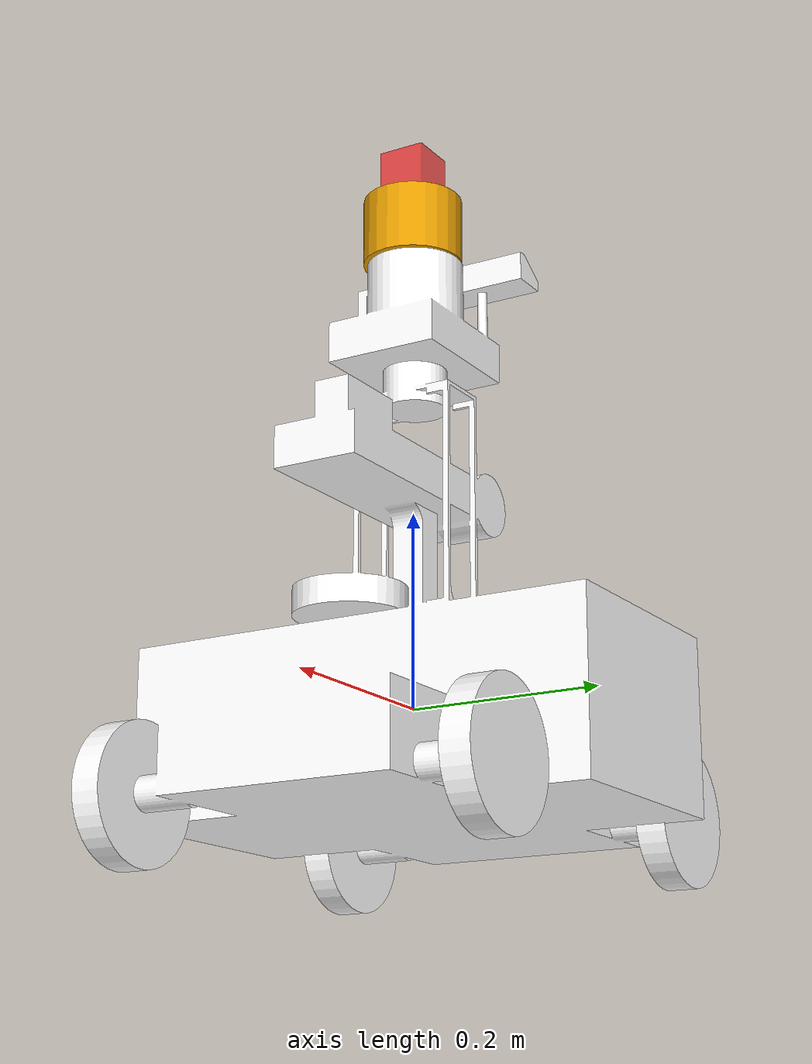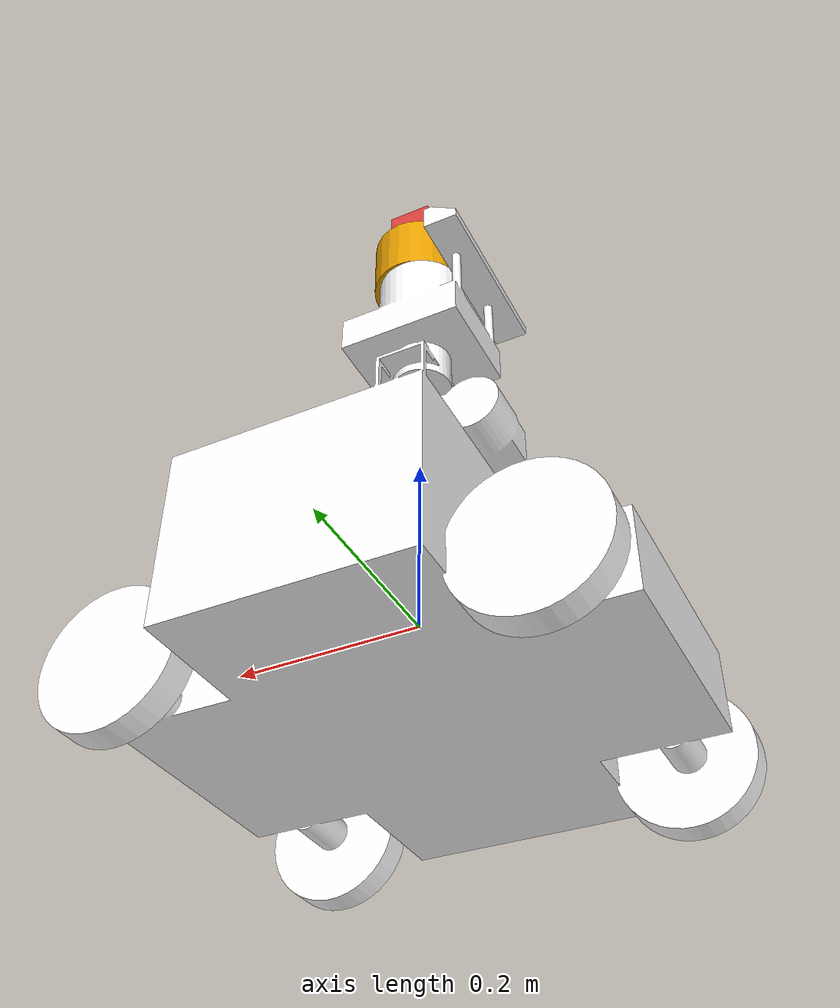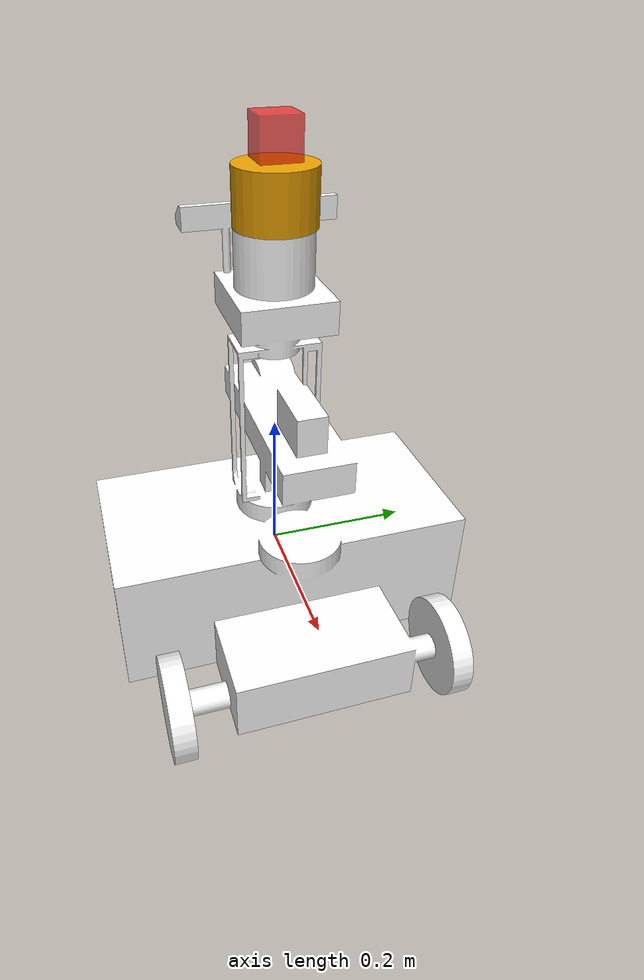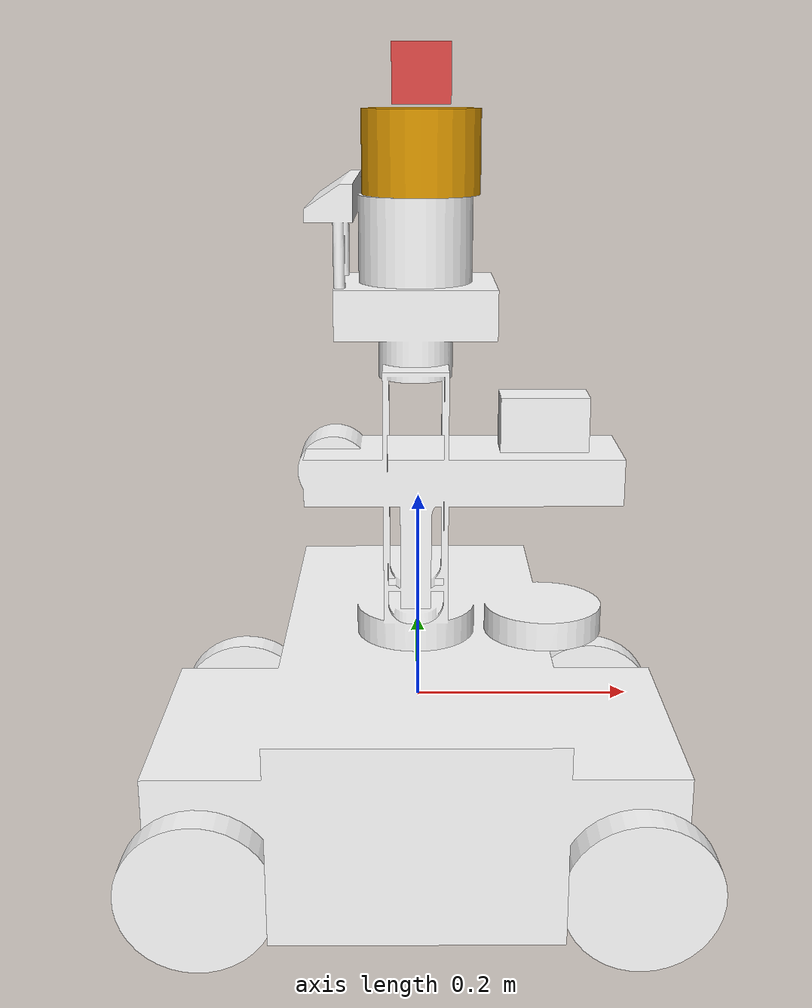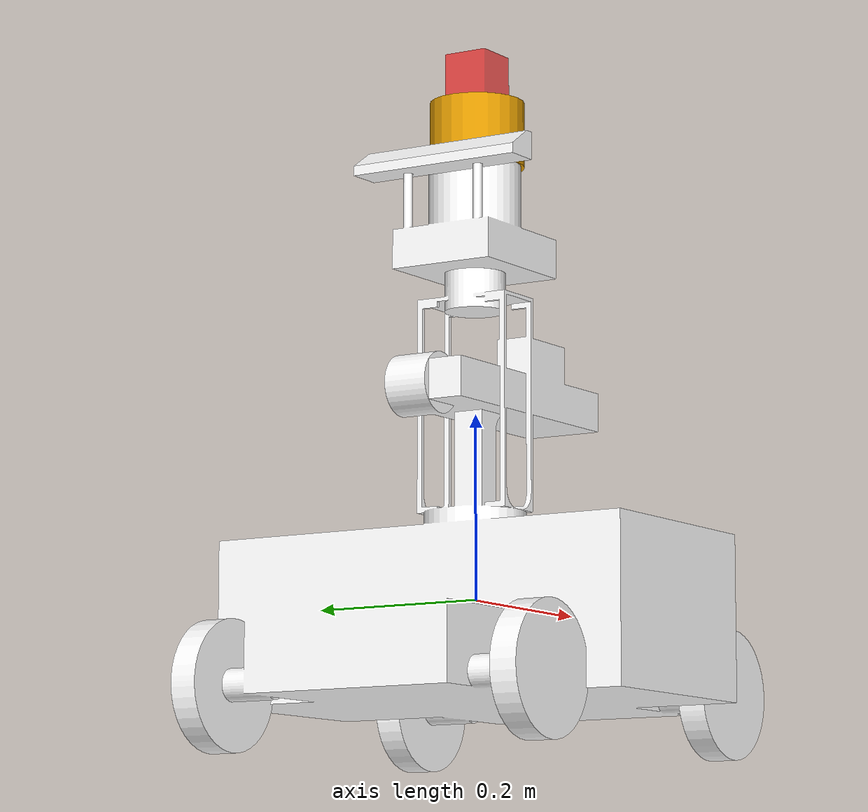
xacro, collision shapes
<?xml version="1.0" encoding="utf-8"?>
<robot name="sentry_lidar" xmlns:xacro="http://www.ros.org/wiki/xacro">
    <xacro:include filename="$(find sentry233333)/urdf/xacro/sentry2.xacro" />

    <xacro:property name="lidar_offset_x" value="0.00246" />
    <xacro:property name="lidar_offset_y" value="0.0002" />
    <xacro:property name="lidar_offset_z" value="0.47178" />

    <!-- lidar -->
    <xacro:include filename="$(find velodyne_description)/urdf/VLP-16.urdf.xacro" />
    <xacro:VLP-16 parent="base_link">
        <origin xyz="${lidar_offset_x} ${lidar_offset_y} ${lidar_offset_z}" rpy="0 0 0" />
    </xacro:VLP-16>

    <xacro:sentry_simple />

    <!-- IMU -->
    <xacro:include filename="$(find sentry233333)/sensors/imu.xacro" />
    <xacro:imu sensor_name="imu" parent_link="base_link">
        <origin rpy="0 0 0" xyz="${lidar_offset_x} ${lidar_offset_y} ${lidar_offset_z+0.1}" />
    </xacro:imu>

    <gazebo>
        <plugin name="gazebo_ros_control" filename="libgazebo_ros_control.so">
            <robotNamespace>/sentry_lidar</robotNamespace>
        </plugin>
    </gazebo>

</robot>

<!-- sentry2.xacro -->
<robot name="sentry" xmlns:xacro="http://www.ros.org/wiki/xacro">
  <!-- property list-->
  <xacro:property name="wheel_diameter" value="0.14" />
  <xacro:property name="wheel_separation" value="0.385" />
  <xacro:property name="wheel_mass" value="0.227" />

  <!-- left-x front-y up-z -->
  <xacro:property name="wheel_bias_x" value="0.19004" />
  <xacro:property name="wheel_bias_y" value="0.19248" />
  <xacro:property name="wheel_bias_z" value="-0.096213" />

  <!-- color -->
  <material name="yellow">
    <color rgba="1 0.4 0 1" />
  </material>
  <material name="black">
    <color rgba="0 0 0 0.95" />
  </material>
  <material name="gray">
    <color rgba="0.75 0.75 0.75 1" />
  </material>

  <xacro:macro name="wheel" params="which_wheel bias_x bias_y bias_z">
    <!-- link -->
    <link name="wheel_${which_wheel}_link">
      <inertial>
        <origin
          xyz="0 0 0"
          rpy="0 0 0" />
        <mass
          value="0.227" />
        <inertia
          ixx="0.00060036"
          ixy="-1.3779E-20"
          ixz="1.6094E-20"
          iyy="0.0011314"
          iyz="-5.6497E-18"
          izz="0.00060036" />
      </inertial>
      <visual>
        <origin
          xyz="0 0 0"
          rpy="0 0 0" />
        <geometry>
          <mesh
            filename="package://sentry233333/meshes/wheel_${which_wheel}_link.STL" />
        </geometry>
        <material
          name="">
          <color
            rgba="1 1 1 1" />
        </material>
      </visual>
      <collision>
        <origin
          xyz="0 0 0"
          rpy="0 0 0" />
        <geometry>
          <mesh
            filename="package://sentry233333/meshes/wheel_${which_wheel}_link.STL" />
        </geometry>
      </collision>
    </link>
    <!-- joint -->
    <joint
      name="wheel_${which_wheel}_joint"
      type="continuous">
      <origin
        xyz="${bias_x} ${bias_y} ${bias_z}"
        rpy="0 0 0" />
      <parent
        link="base_link" />
      <child
        link="wheel_${which_wheel}_link" />
      <axis
        xyz="0 1 0" />
    </joint>
    <!-- others -->
    <gazebo reference="wheel_${which_wheel}_link">
      <material>Gazebo/Blue</material>
    </gazebo>

    <gazebo reference="wheel_${which_wheel}_link">
      <mu1>10000000</mu1>
      <mu2>10000000</mu2>
      <kp>10000000</kp>
      <kd>1</kd>
    </gazebo>
    <!-- transmission -->
    <transmission name="wheel_${which_wheel}_joint_trans">
      <type>transmission_interface/SimpleTransmission</type>
      <joint name="wheel_${which_wheel}_joint">
        <hardwareInterface>hardware_interface/VelocityJointInterface</hardwareInterface>
      </joint>
      <actuator name="wheel_${which_wheel}_joint_controller">
        <hardwareInterface>hardware_interface/VelocityJointInterface</hardwareInterface>
        <mechanicalReduction>1</mechanicalReduction>
      </actuator>
    </transmission>
    <!-- end -->
  </xacro:macro>

  <xacro:macro name="sentry_simple" params="name:=sentry_simple">

    <link name="base_link">
      <inertial>
        <origin
          xyz="0 0 0"
          rpy="0 0 0" />
        <mass
          value="25.541" />
        <inertia
          ixx="0.91899"
          ixy="5.9401E-05"
          ixz="-0.010701"
          iyy="0.75967"
          iyz="-4.2596E-05"
          izz="0.78912" />
      </inertial>

      <visual>
        <origin
          xyz="0 0 0"
          rpy="0 0 0" />
        <geometry>
          <mesh
            filename="package://sentry233333/meshes/base_link.STL" />
        </geometry>
        <material
          name="">
          <color
            rgba="1 1 1 1" />
        </material>
      </visual>

      <collision>
        <origin
          xyz="0 0 0"
          rpy="0 0 0" />
        <geometry>
          <mesh
            filename="package://sentry233333/meshes/base_link.STL" />
        </geometry>
      </collision>
    </link>

    <xacro:wheel which_wheel="leftfront" bias_x="${wheel_bias_x}" bias_y="${wheel_bias_y}"
      bias_z="${wheel_bias_z}" />
    <xacro:wheel which_wheel="leftback" bias_x="${wheel_bias_x}" bias_y="${-wheel_bias_y}"
      bias_z="${wheel_bias_z}" />
    <xacro:wheel which_wheel="rightfront" bias_x="${-wheel_bias_x}" bias_y="${wheel_bias_y}"
      bias_z="${wheel_bias_z}" />
    <xacro:wheel which_wheel="rightback" bias_x="${-wheel_bias_x}" bias_y="${-wheel_bias_y}"
      bias_z="${wheel_bias_z}" />

    <gazebo>
      <plugin name="gazebo_ros_control" filename="libgazebo_ros_control.so">
        <robotNamespace>/</robotNamespace>
      </plugin>
    </gazebo>

    <gazebo reference="base_link">
      <material>Gazebo/Gray</material>
    </gazebo>

    <gazebo>
      <plugin name="skid_steer_drive_controller"
        filename="libgazebo_ros_skid_steer_drive.so">
        <rosDebugLevel>Debug</rosDebugLevel>
        <publishWheelTF>true</publishWheelTF>
        <robotNamespace>/</robotNamespace>
        <publishTf>1</publishTf>
        <publishWheelJointState>true</publishWheelJointState>
        <updateRate>100.0</updateRate>
        <leftFrontJoint>wheel_leftfront_joint</leftFrontJoint>
        <leftRearJoint>wheel_leftback_joint</leftRearJoint>
        <rightFrontJoint>wheel_rightfront_joint</rightFrontJoint>
        <rightRearJoint>wheel_rightback_joint</rightRearJoint>
        <wheelSeparation>${wheel_separation}</wheelSeparation>
        <wheelDiameter>${wheel_diameter}</wheelDiameter>
        <broadcastTF>1</broadcastTF>
        <torque>100</torque>
        <commandTopic>cmd_vel</commandTopic>
        <odometryFrame>odom</odometryFrame>
        <odometryTopic>odom</odometryTopic>
        <robotBaseFrame>base_link</robotBaseFrame>
      </plugin>
    </gazebo>
  </xacro:macro>

</robot>

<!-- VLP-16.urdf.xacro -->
<robot xmlns:xacro="http://www.ros.org/wiki/xacro" name="VLP-16">
  <xacro:property name="M_PI" value="3.1415926535897931" />
  <xacro:macro name="VLP-16"
    params="*origin parent:=base_link name:=velodyne topic:=/velodyne_points organize_cloud:=false hz:=10 lasers:=16 samples:=1875 collision_range:=0.3 min_range:=0.9 max_range:=130.0 noise:=0.008 min_angle:=-${M_PI} max_angle:=${M_PI} gpu:=false">

    <joint name="${name}_base_mount_joint" type="fixed">
      <xacro:insert_block name="origin" />
      <parent link="${parent}" />
      <child link="${name}_base_link" />
    </joint>

    <link name="${name}_base_link">
      <inertial>
        <mass value="0.83" />
        <origin xyz="0 0 0.03585" />
        <inertia ixx="${(0.83 * (3.0*0.0516*0.0516 + 0.0717*0.0717)) / 12.0}" ixy="0" ixz="0"
          iyy="${(0.83 * (3.0*0.0516*0.0516 + 0.0717*0.0717)) / 12.0}" iyz="0"
          izz="${0.5 * 0.83 * (0.0516*0.0516)}" />
      </inertial>
      <visual>
        <geometry>
          <mesh filename="package://velodyne_description/meshes/VLP16_base_1.dae" />
        </geometry>
      </visual>
      <visual>
        <geometry>
          <mesh filename="package://velodyne_description/meshes/VLP16_base_2.dae" />
        </geometry>
      </visual>
      <collision>
        <origin rpy="0 0 0" xyz="0 0 0.03585" />
        <geometry>
          <cylinder radius="0.0516" length="0.0717" />
        </geometry>
      </collision>
    </link>

    <joint name="${name}_base_scan_joint" type="fixed">
      <origin xyz="0 0 0.0377" rpy="0 0 0" />
      <parent link="${name}_base_link" />
      <child link="${name}" />
    </joint>

    <link name="${name}">
      <inertial>
        <mass value="0.01" />
        <origin xyz="0 0 0" />
        <inertia ixx="1e-7" ixy="0" ixz="0" iyy="1e-7" iyz="0" izz="1e-7" />
      </inertial>
      <visual>
        <origin xyz="0 0 -0.0377" />
        <geometry>
          <mesh filename="package://velodyne_description/meshes/VLP16_scan.dae" />
        </geometry>
      </visual>
      <collision>
        <geometry>
          <sphere radius="0" />
        </geometry>
      </collision>
    </link>

    <!-- Gazebo requires the velodyne_gazebo_plugins package -->
    <gazebo reference="${name}">
      <xacro:if value="${gpu}">
        <sensor type="gpu_ray" name="${name}-VLP16">
          <pose>0 0 0 0 0 0</pose>
          <visualize>false</visualize>
          <update_rate>${hz}</update_rate>
          <ray>
            <scan>
              <horizontal>
                <samples>${samples}</samples>
                <resolution>1</resolution>
                <min_angle>${min_angle}</min_angle>
                <max_angle>${max_angle}</max_angle>
              </horizontal>
              <vertical>
                <samples>${lasers}</samples>
                <resolution>1</resolution>
                <min_angle>-${15.0*M_PI/180.0}</min_angle>
                <max_angle> ${15.0*M_PI/180.0}</max_angle>
              </vertical>
            </scan>
            <range>
              <min>${collision_range}</min>
              <max>${max_range+1}</max>
              <resolution>0.001</resolution>
            </range>
            <noise>
              <type>gaussian</type>
              <mean>0.0</mean>
              <stddev>0.0</stddev>
            </noise>
          </ray>
          <plugin name="gazebo_ros_laser_controller" filename="libgazebo_ros_velodyne_gpu_laser.so">
            <topicName>${topic}</topicName>
            <frameName>${name}</frameName>
            <organize_cloud>${organize_cloud}</organize_cloud>
            <min_range>${min_range}</min_range>
            <max_range>${max_range}</max_range>
            <gaussianNoise>${noise}</gaussianNoise>
          </plugin>
        </sensor>
      </xacro:if>
      <xacro:unless value="${gpu}">
        <sensor type="ray" name="${name}-VLP16">
          <pose>0 0 0 0 0 0</pose>
          <visualize>false</visualize>
          <update_rate>${hz}</update_rate>
          <ray>
            <scan>
              <horizontal>
                <samples>${samples}</samples>
                <resolution>1</resolution>
                <min_angle>${min_angle}</min_angle>
                <max_angle>${max_angle}</max_angle>
              </horizontal>
              <vertical>
                <samples>${lasers}</samples>
                <resolution>1</resolution>
                <min_angle>-${15.0*M_PI/180.0}</min_angle>
                <max_angle> ${15.0*M_PI/180.0}</max_angle>
              </vertical>
            </scan>
            <range>
              <min>${collision_range}</min>
              <max>${max_range+1}</max>
              <resolution>0.001</resolution>
            </range>
            <noise>
              <type>gaussian</type>
              <mean>0.0</mean>
              <stddev>0.0</stddev>
            </noise>
          </ray>
          <plugin name="gazebo_ros_laser_controller" filename="libgazebo_ros_velodyne_laser.so">
            <topicName>${topic}</topicName>
            <frameName>${name}</frameName>
            <organize_cloud>${organize_cloud}</organize_cloud>
            <min_range>${min_range}</min_range>
            <max_range>${max_range}</max_range>
            <gaussianNoise>${noise}</gaussianNoise>
          </plugin>
        </sensor>
      </xacro:unless>
    </gazebo>

  </xacro:macro>
</robot>

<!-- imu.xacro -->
<robot xmlns:xacro="http://wiki.ros.org/xacro">

    <xacro:macro name="imu" params="sensor_name parent_link *origin">

        <xacro:property name="imu_offset_x" value="0" />
        <xacro:property name="imu_offset_y" value="0" />
        <xacro:property name="imu_offset_z" value="0.2" />
        <xacro:property name="imu_size" value="0.05" />
        <xacro:property name="imu_m" value="0.01" /> <!-- imu质量 -->
        <xacro:macro name="Box_inertial_matrix" params="m l w h">
            <inertial>
                <mass value="${m}" />
                <inertia ixx="${m*(h*h + l*l)/12}" ixy="0" ixz="0"
                    iyy="${m*(w*w + l*l)/12}" iyz="0"
                    izz="${m*(w*w + h*h)/12}" />
            </inertial>
        </xacro:macro>

        <!-- imu -->
        <joint name="imutobase" type="fixed">
            <xacro:insert_block name="origin" />
            <parent link="${parent_link}" />
            <child link="imu_base" />
        </joint>

        <link name="imu_base">
            <visual>
                <origin rpy="0 0 0" xyz="0 0 0" />
                <geometry>
                    <box size="${imu_size} ${imu_size} ${imu_size}" />
                </geometry>
                <material name="black">
                    <color rgba="1.0 0.0 0.0 0.6" />
                </material>
            </visual>
            <collision>
                <geometry>
                    <box size="${imu_size} ${imu_size} ${imu_size}" />
                </geometry>
                <origin xyz="0.0 0.0 0" rpy="0.0 0.0 0.0" />
            </collision>
            <xacro:Box_inertial_matrix m="${imu_m}" l="${imu_size}" w="${imu_size}" h="${imu_size}" />
        </link>

        <!-- 被引用的link -->
        <gazebo reference="imu_base">
            <material>Gazebo/Bule</material>
            <gravity>true</gravity>
            <sensor name="imu_sensor" type="imu">
                <always_on>true</always_on>
                <update_rate>100</update_rate>
                <visualize>true</visualize>
                <topic>__default_topic__</topic>
                <plugin filename="libgazebo_ros_imu_sensor.so" name="imu_plugin">
                    <topicName>imu/data</topicName>
                    <bodyName>imu_base</bodyName>
                    <updateRateHZ>100.0</updateRateHZ>
                    <gaussianNoise>0.01</gaussianNoise>
                    <xyzOffset>0 0 0</xyzOffset>
                    <rpyOffset>0 0 0</rpyOffset>
                    <frameName>imu_base</frameName>
                </plugin>
                <pose>0 0 0 0 0 0</pose>
            </sensor>
        </gazebo>

    </xacro:macro>
</robot>
